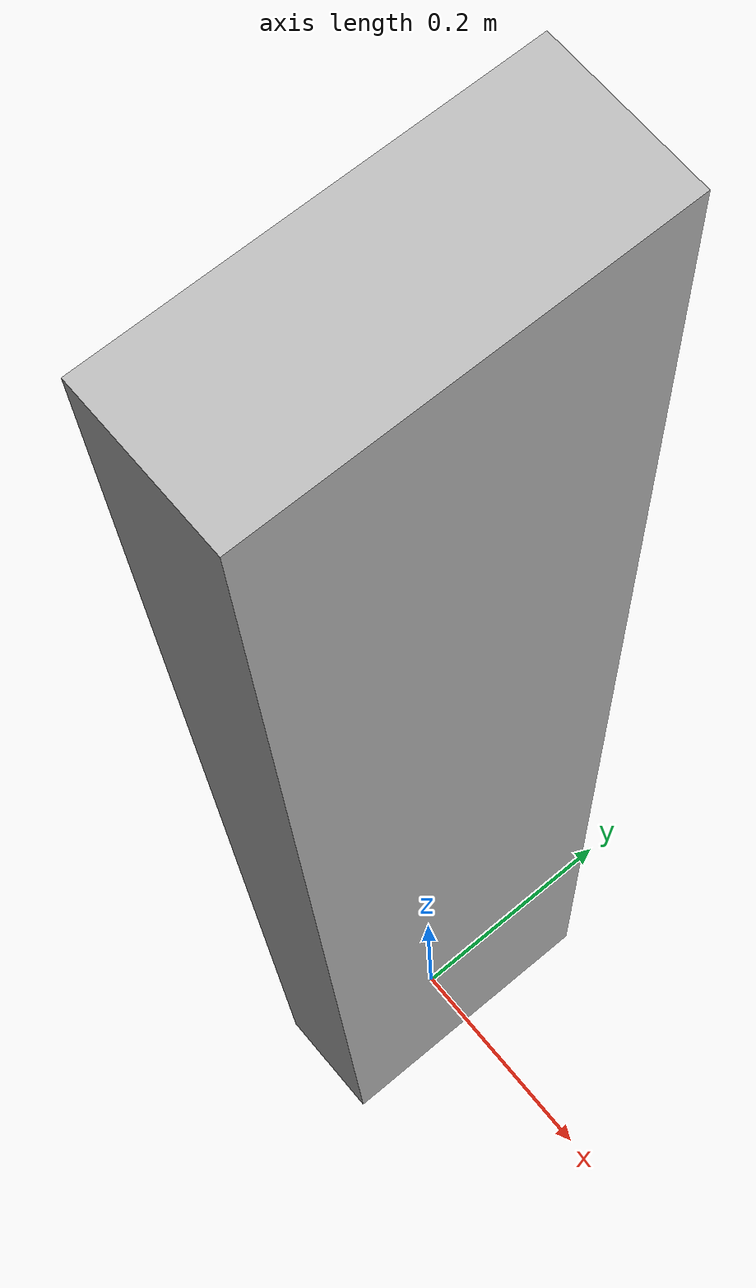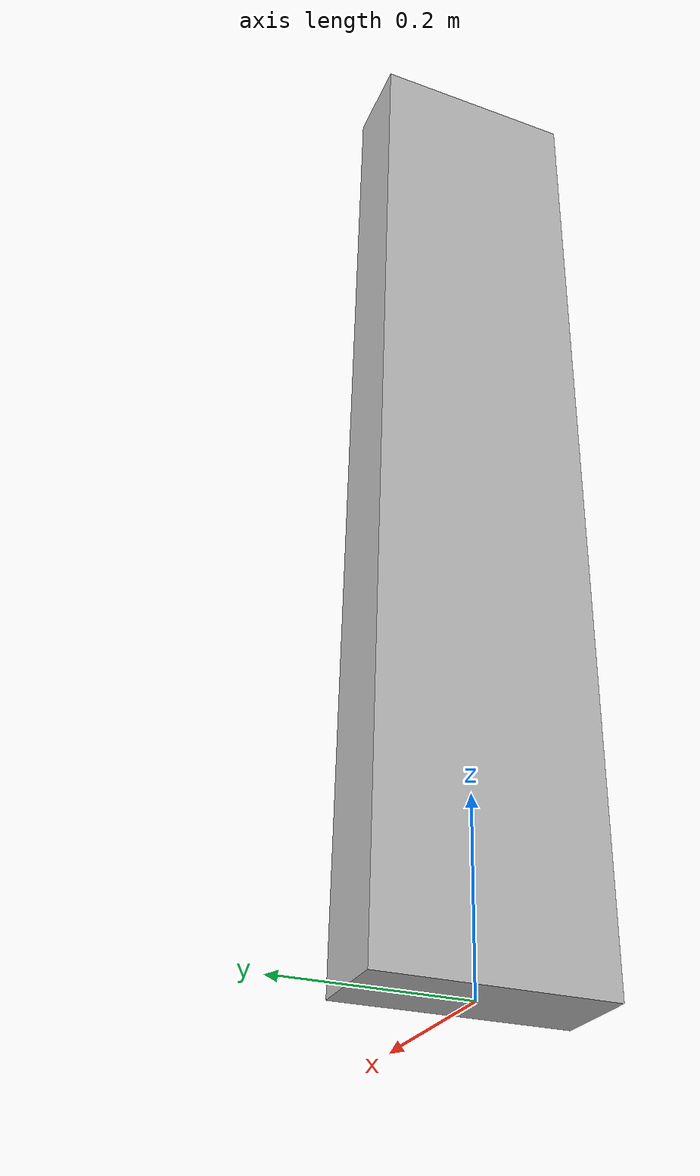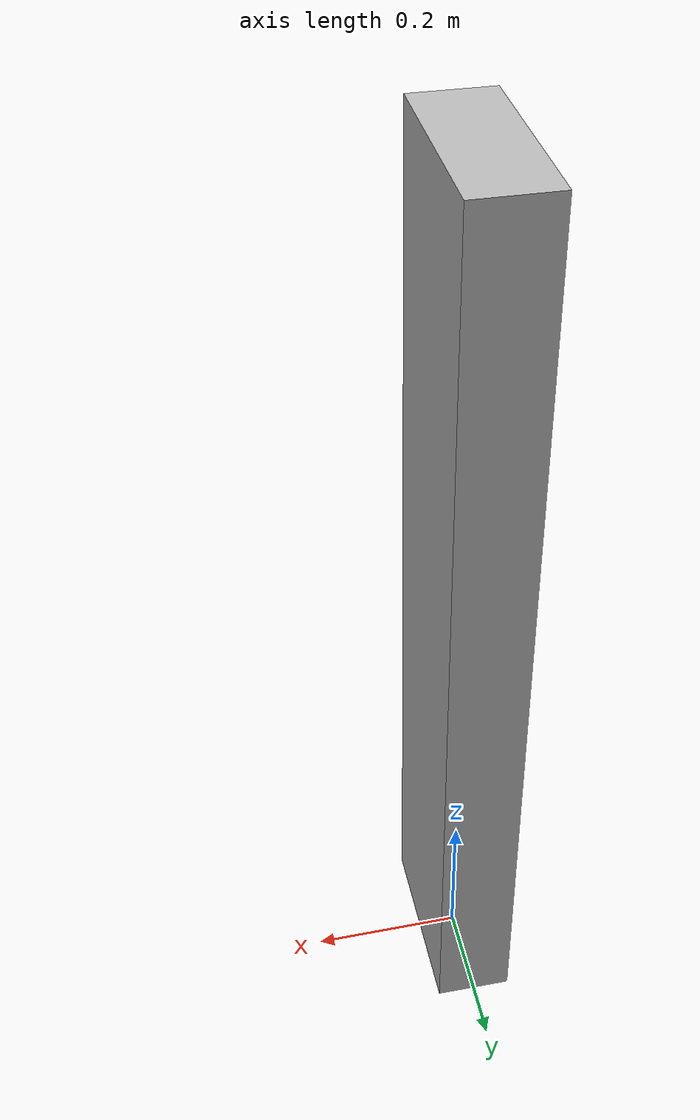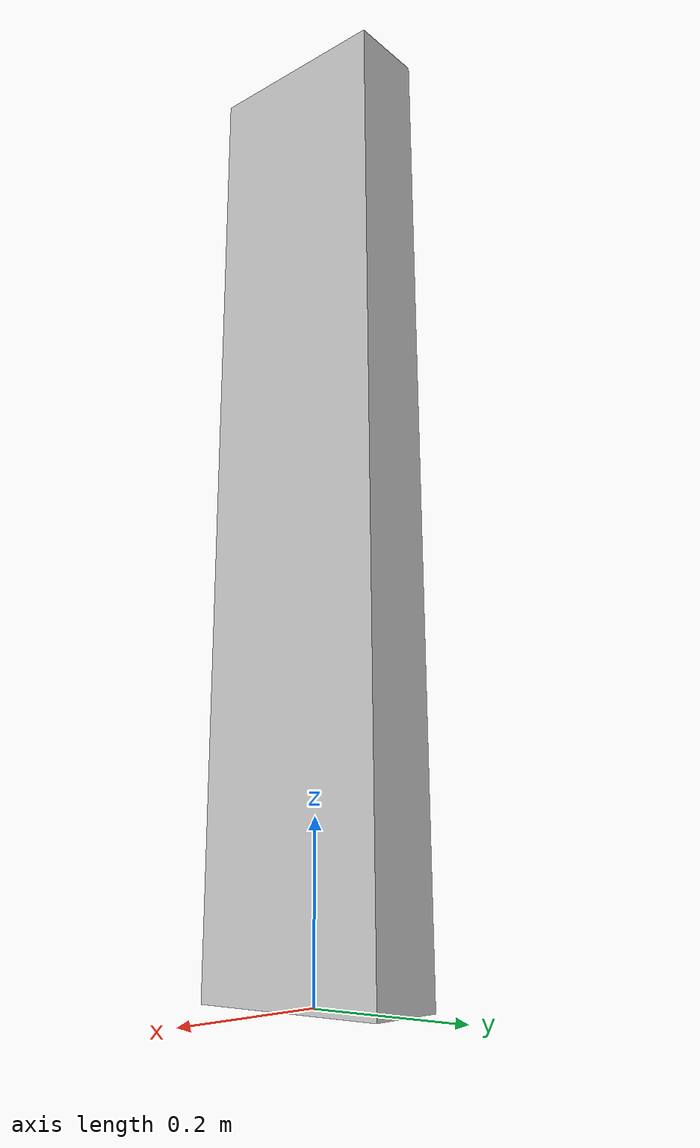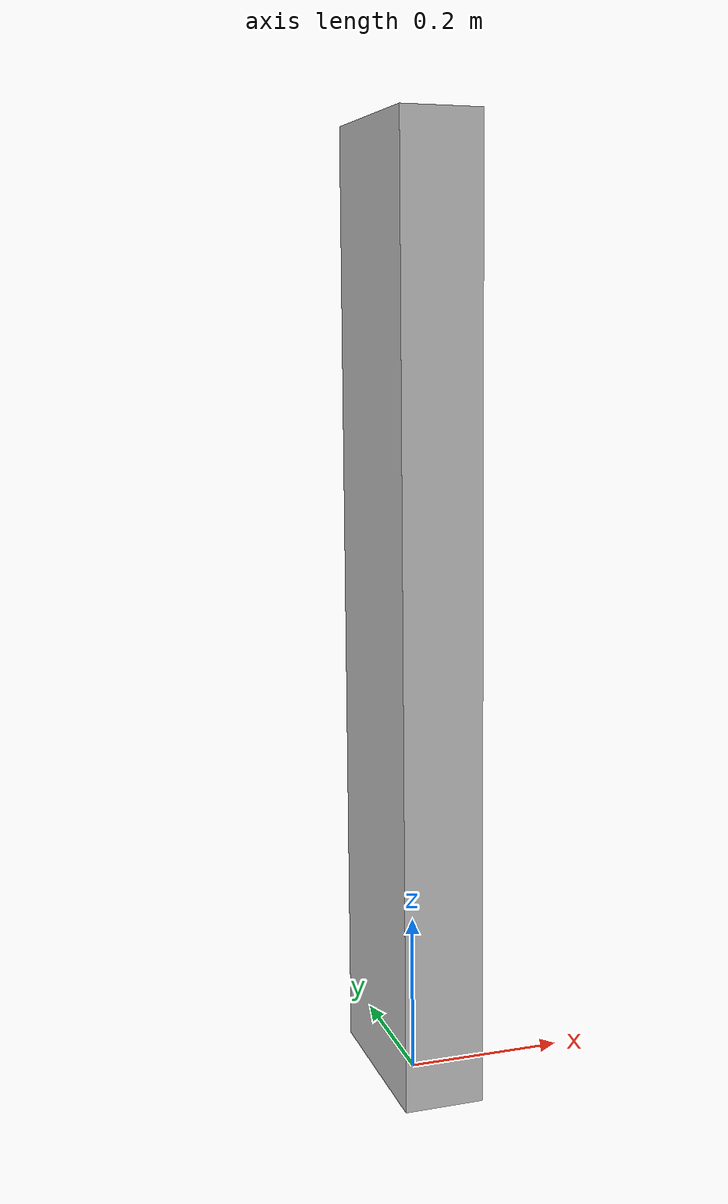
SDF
<?xml version="1.0"?>
<sdf version="1.6">
  <model name="obstacle_box_1">
    <static>false</static>
    <!-- Đặt tâm khối ở z=1.25 (vì half-height=1.25) -->
    <pose>0 0 0.6 0 0 0</pose>

    <link name="box">
      <!-- Động học: để khối không quá “bay bổng” khi bị chạm -->
      <inertial>
        <mass>15.0</mass>    <!-- có thể giảm xuống 5.0 nếu muốn dễ đổ hơn -->
        <inertia>
          <ixx>1</ixx><iyy>1</iyy><izz>1</izz>
          <ixy>0</ixy><ixz>0</ixz><iyz>0</iyz>
        </inertia>
      </inertial>

      <collision name="c">
        <geometry><box><size>0.10 0.25 1.20</size></box></geometry>
        <surface>
          <contact>
            <ode>
              <kp>3e5</kp>     <!-- đủ cứng, vẫn cho xô đổ -->
              <kd>1e3</kd>
              <max_vel>0.2</max_vel>
              <min_depth>0.001</min_depth>
            </ode>
          </contact>
          <friction>
            <ode>
              <mu>0.8</mu>
              <mu2>0.8</mu2>
            </ode>
          </friction>
        </surface>
      </collision>

      <visual name="v">
        <geometry><box><size>0.10 0.25 1.20</size></box></geometry>
      </visual>
    </link>
  </model>
</sdf>
